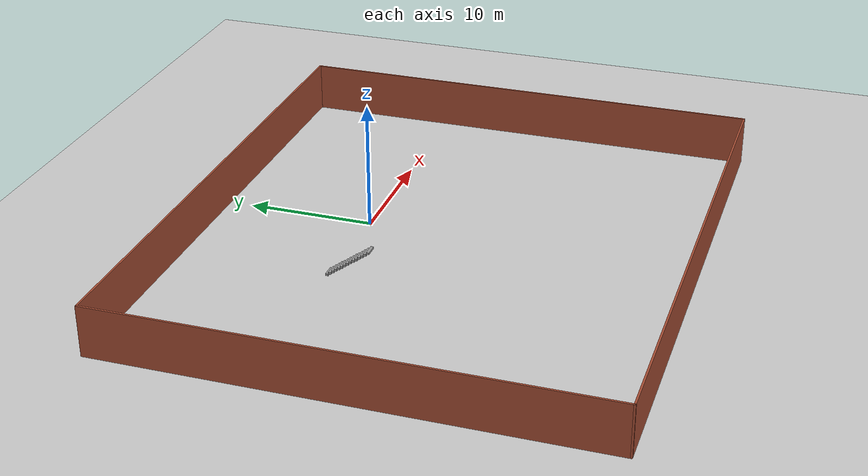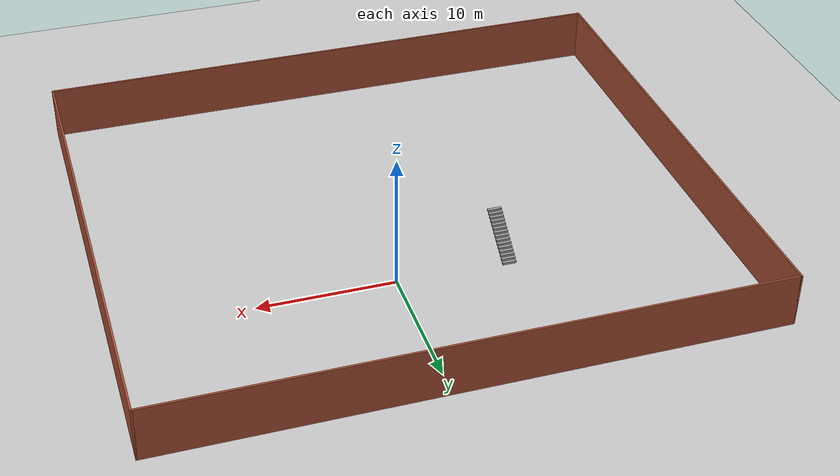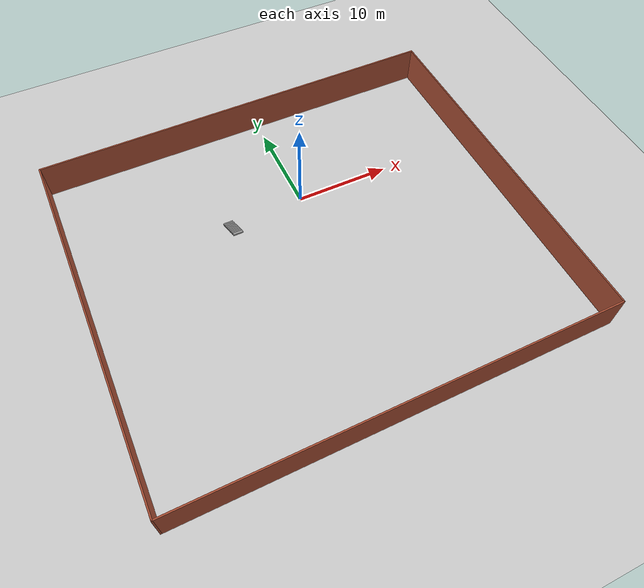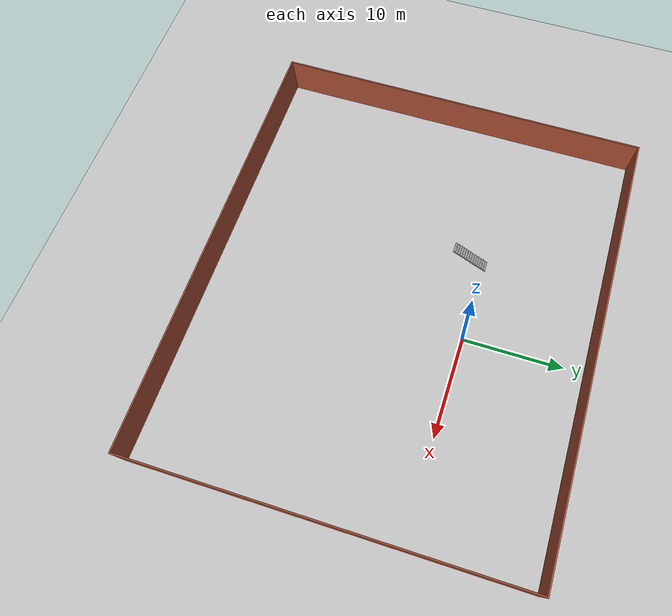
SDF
<sdf version="1.7">
 <world name="default">
  <model name="ground_plane">
   <static>1</static>
   <link name="link">
    <collision name="collision">
     <geometry><plane><normal>0 0 1</normal><size>100 100</size></plane></geometry>
     <surface><friction><ode><mu>100</mu><mu2>50</mu2></ode></friction></surface>
    </collision>
    <visual name="visual">
     <cast_shadows>0</cast_shadows>
     <geometry><plane><normal>0 0 1</normal><size>100 100</size></plane></geometry>
     <material>
      <script><uri>file://media/materials/scripts/gazebo.material</uri><name>Gazebo/Grey</name></script>
     </material>
    </visual>
   </link>
  </model>
  <model name="wall11">
   <pose>-2 -7 0 0 -0 0</pose>
   <link name="Wall_0">
    <collision name="Wall_0_Collision">
     <geometry><box><size>44.15 0.15 4</size></box></geometry>
     <pose>0 0 2 0 -0 0</pose>
    </collision>
    <visual name="Wall_0_Visual">
     <pose>0 0 2 0 -0 0</pose>
     <geometry><box><size>44.15 0.15 4</size></box></geometry>
     <material>
      <script><uri>file://media/materials/scripts/gazebo.material</uri><name>Gazebo/Bricks</name></script>
      <ambient>1 1 1 1</ambient>
     </material>
     <meta><layer>0</layer></meta>
    </visual>
    <pose>0 19 0 0 -0 0</pose>
   </link>
   <link name="Wall_2">
    <collision name="Wall_2_Collision">
     <geometry><box><size>38.15 0.15 4</size></box></geometry>
     <pose>0 0 2 0 -0 0</pose>
    </collision>
    <visual name="Wall_2_Visual">
     <pose>0 0 2 0 -0 0</pose>
     <geometry><box><size>38.15 0.15 4</size></box></geometry>
     <material>
      <script><uri>file://media/materials/scripts/gazebo.material</uri><name>Gazebo/Bricks</name></script>
      <ambient>1 1 1 1</ambient>
     </material>
     <meta><layer>0</layer></meta>
    </visual>
    <pose>22 0 0 0 -0 -1.5708</pose>
   </link>
   <link name="Wall_4">
    <collision name="Wall_4_Collision">
     <geometry><box><size>44.15 0.15 4</size></box></geometry>
     <pose>0 0 2 0 -0 0</pose>
    </collision>
    <visual name="Wall_4_Visual">
     <pose>0 0 2 0 -0 0</pose>
     <geometry><box><size>44.15 0.15 4</size></box></geometry>
     <material>
      <script><uri>file://media/materials/scripts/gazebo.material</uri><name>Gazebo/Bricks</name></script>
      <ambient>1 1 1 1</ambient>
     </material>
     <meta><layer>0</layer></meta>
    </visual>
    <pose>0 -19 0 0 -0 3.14159</pose>
   </link>
   <link name="Wall_6">
    <collision name="Wall_6_Collision">
     <geometry><box><size>38.15 0.15 4</size></box></geometry>
     <pose>0 0 2 0 -0 0</pose>
    </collision>
    <visual name="Wall_6_Visual">
     <pose>0 0 2 0 -0 0</pose>
     <geometry><box><size>38.15 0.15 4</size></box></geometry>
     <material>
      <script><uri>file://media/materials/scripts/gazebo.material</uri><name>Gazebo/Bricks</name></script>
      <ambient>1 1 1 1</ambient>
     </material>
     <meta><layer>0</layer></meta>
    </visual>
    <pose>-22 0 0 0 -0 1.5708</pose>
   </link>
   <static>1</static>
  </model>
  <model name="stair">
   <pose>-7.21313 -1.43436 0 0 -0 0</pose>
   <link name="Stairs_1">
    <visual name="Stairs_1_Visual_0">
     <pose>-0.987367 1.63333 0.083333 0 -0 0</pose>
     <geometry><box><size>1 0.233333 0.166667</size></box></geometry>
     <material>
      <script><uri>file://media/materials/scripts/gazebo.material</uri><name>Gazebo/Grey</name></script>
      <ambient>1 1 1 1</ambient>
     </material>
     <meta><layer>0</layer></meta>
    </visual>
    <collision name="Stairs_1_Collision_0">
     <geometry><box><size>1 0.233333 0.166667</size></box></geometry>
     <pose>-0.987367 1.63333 0.083333 0 -0 0</pose>
    </collision>
    <visual name="Stairs_1_Visual_1">
     <pose>-0.987367 1.4 0.25 0 -0 0</pose>
     <geometry><box><size>1 0.233333 0.166667</size></box></geometry>
     <material>
      <script><uri>file://media/materials/scripts/gazebo.material</uri><name>Gazebo/Grey</name></script>
      <ambient>1 1 1 1</ambient>
     </material>
     <meta><layer>0</layer></meta>
    </visual>
    <collision name="Stairs_1_Collision_1">
     <geometry><box><size>1 0.233333 0.166667</size></box></geometry>
     <pose>-0.987367 1.4 0.25 0 -0 0</pose>
    </collision>
    <visual name="Stairs_1_Visual_2">
     <pose>-0.987367 1.16667 0.416667 0 -0 0</pose>
     <geometry><box><size>1 0.233333 0.166667</size></box></geometry>
     <material>
      <script><uri>file://media/materials/scripts/gazebo.material</uri><name>Gazebo/Grey</name></script>
      <ambient>1 1 1 1</ambient>
     </material>
     <meta><layer>0</layer></meta>
    </visual>
    <collision name="Stairs_1_Collision_2">
     <geometry><box><size>1 0.233333 0.166667</size></box></geometry>
     <pose>-0.987367 1.16667 0.416667 0 -0 0</pose>
    </collision>
    <visual name="Stairs_1_Visual_3">
     <pose>-0.987367 0.933333 0.583333 0 -0 0</pose>
     <geometry><box><size>1 0.233333 0.166667</size></box></geometry>
     <material>
      <script><uri>file://media/materials/scripts/gazebo.material</uri><name>Gazebo/Grey</name></script>
      <ambient>1 1 1 1</ambient>
     </material>
     <meta><layer>0</layer></meta>
    </visual>
    <collision name="Stairs_1_Collision_3">
     <geometry><box><size>1 0.233333 0.166667</size></box></geometry>
     <pose>-0.987367 0.933333 0.583333 0 -0 0</pose>
    </collision>
    <visual name="Stairs_1_Visual_4">
     <pose>-0.987367 0.7 0.75 0 -0 0</pose>
     <geometry><box><size>1 0.233333 0.166667</size></box></geometry>
     <material>
      <script><uri>file://media/materials/scripts/gazebo.material</uri><name>Gazebo/Grey</name></script>
      <ambient>1 1 1 1</ambient>
     </material>
     <meta><layer>0</layer></meta>
    </visual>
    <collision name="Stairs_1_Collision_4">
     <geometry><box><size>1 0.233333 0.166667</size></box></geometry>
     <pose>-0.987367 0.7 0.75 0 -0 0</pose>
    </collision>
    <visual name="Stairs_1_Visual_5">
     <pose>-0.987367 0.466667 0.916667 0 -0 0</pose>
     <geometry><box><size>1 0.233333 0.166667</size></box></geometry>
     <material>
      <script><uri>file://media/materials/scripts/gazebo.material</uri><name>Gazebo/Grey</name></script>
      <ambient>1 1 1 1</ambient>
     </material>
     <meta><layer>0</layer></meta>
    </visual>
    <collision name="Stairs_1_Collision_5">
     <geometry><box><size>1 0.233333 0.166667</size></box></geometry>
     <pose>-0.987367 0.466667 0.916667 0 -0 0</pose>
    </collision>
    <visual name="Stairs_1_Visual_6">
     <pose>-0.987367 0.233333 1.08333 0 -0 0</pose>
     <geometry><box><size>1 0.233333 0.166667</size></box></geometry>
     <material>
      <script><uri>file://media/materials/scripts/gazebo.material</uri><name>Gazebo/Grey</name></script>
      <ambient>1 1 1 1</ambient>
     </material>
     <meta><layer>0</layer></meta>
    </visual>
    <collision name="Stairs_1_Collision_6">
     <geometry><box><size>1 0.233333 0.166667</size></box></geometry>
     <pose>-0.987367 0.233333 1.08333 0 -0 0</pose>
    </collision>
    <visual name="Stairs_1_Visual_7">
     <pose>-0.987367 -0 1.25 0 -0 0</pose>
     <geometry><box><size>1 0.233333 0.166667</size></box></geometry>
     <material>
      <script><uri>file://media/materials/scripts/gazebo.material</uri><name>Gazebo/Grey</name></script>
      <ambient>1 1 1 1</ambient>
     </material>
     <meta><layer>0</layer></meta>
    </visual>
    <collision name="Stairs_1_Collision_7">
     <geometry><box><size>1 0.233333 0.166667</size></box></geometry>
     <pose>-0.987367 -0 1.25 0 -0 0</pose>
    </collision>
    <visual name="Stairs_1_Visual_8">
     <pose>-0.987367 -0.233333 1.41667 0 -0 0</pose>
     <geometry><box><size>1 0.233333 0.166667</size></box></geometry>
     <material>
      <script><uri>file://media/materials/scripts/gazebo.material</uri><name>Gazebo/Grey</name></script>
      <ambient>1 1 1 1</ambient>
     </material>
     <meta><layer>0</layer></meta>
    </visual>
    <collision name="Stairs_1_Collision_8">
     <geometry><box><size>1 0.233333 0.166667</size></box></geometry>
     <pose>-0.987367 -0.233333 1.41667 0 -0 0</pose>
    </collision>
    <visual name="Stairs_1_Visual_9">
     <pose>-0.987367 -0.466667 1.58333 0 -0 0</pose>
     <geometry><box><size>1 0.233333 0.166667</size></box></geometry>
     <material>
      <script><uri>file://media/materials/scripts/gazebo.material</uri><name>Gazebo/Grey</name></script>
      <ambient>1 1 1 1</ambient>
     </material>
     <meta><layer>0</layer></meta>
    </visual>
    <collision name="Stairs_1_Collision_9">
     <geometry><box><size>1 0.233333 0.166667</size></box></geometry>
     <pose>-0.987367 -0.466667 1.58333 0 -0 0</pose>
    </collision>
    <visual name="Stairs_1_Visual_10">
     <pose>-0.987367 -0.7 1.75 0 -0 0</pose>
     <geometry><box><size>1 0.233333 0.166667</size></box></geometry>
     <material>
      <script><uri>file://media/materials/scripts/gazebo.material</uri><name>Gazebo/Grey</name></script>
      <ambient>1 1 1 1</ambient>
     </material>
     <meta><layer>0</layer></meta>
    </visual>
    <collision name="Stairs_1_Collision_10">
     <geometry><box><size>1 0.233333 0.166667</size></box></geometry>
     <pose>-0.987367 -0.7 1.75 0 -0 0</pose>
    </collision>
    <visual name="Stairs_1_Visual_11">
     <pose>-0.987367 -0.933334 1.91667 0 -0 0</pose>
     <geometry><box><size>1 0.233333 0.166667</size></box></geometry>
     <material>
      <script><uri>file://media/materials/scripts/gazebo.material</uri><name>Gazebo/Grey</name></script>
      <ambient>1 1 1 1</ambient>
     </material>
     <meta><layer>0</layer></meta>
    </visual>
    <collision name="Stairs_1_Collision_11">
     <geometry><box><size>1 0.233333 0.166667</size></box></geometry>
     <pose>-0.987367 -0.933334 1.91667 0 -0 0</pose>
    </collision>
    <visual name="Stairs_1_Visual_12">
     <pose>-0.987367 -1.16667 2.08333 0 -0 0</pose>
     <geometry><box><size>1 0.233333 0.166667</size></box></geometry>
     <material>
      <script><uri>file://media/materials/scripts/gazebo.material</uri><name>Gazebo/Grey</name></script>
      <ambient>1 1 1 1</ambient>
     </material>
     <meta><layer>0</layer></meta>
    </visual>
    <collision name="Stairs_1_Collision_12">
     <geometry><box><size>1 0.233333 0.166667</size></box></geometry>
     <pose>-0.987367 -1.16667 2.08333 0 -0 0</pose>
    </collision>
    <visual name="Stairs_1_Visual_13">
     <pose>-0.987367 -1.4 2.25 0 -0 0</pose>
     <geometry><box><size>1 0.233333 0.166667</size></box></geometry>
     <material>
      <script><uri>file://media/materials/scripts/gazebo.material</uri><name>Gazebo/Grey</name></script>
      <ambient>1 1 1 1</ambient>
     </material>
     <meta><layer>0</layer></meta>
    </visual>
    <collision name="Stairs_1_Collision_13">
     <geometry><box><size>1 0.233333 0.166667</size></box></geometry>
     <pose>-0.987367 -1.4 2.25 0 -0 0</pose>
    </collision>
    <visual name="Stairs_1_Visual_14">
     <pose>-0.987367 -1.63333 2.41667 0 -0 0</pose>
     <geometry><box><size>1 0.233333 0.166667</size></box></geometry>
     <material>
      <script><uri>file://media/materials/scripts/gazebo.material</uri><name>Gazebo/Grey</name></script>
      <ambient>1 1 1 1</ambient>
     </material>
     <meta><layer>0</layer></meta>
    </visual>
    <collision name="Stairs_1_Collision_14">
     <geometry><box><size>1 0.233333 0.166667</size></box></geometry>
     <pose>-0.987367 -1.63333 2.41667 0 -0 0</pose>
    </collision>
   </link>
   <static>1</static>
  </model>
 </world>
</sdf>
